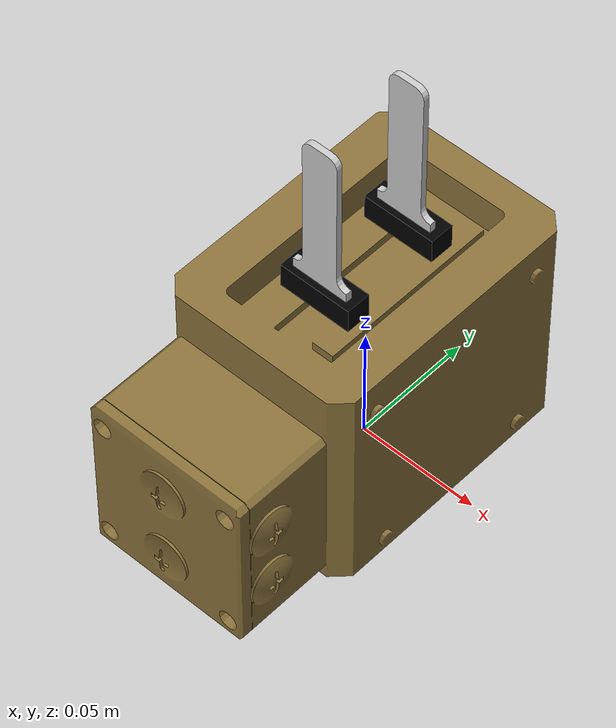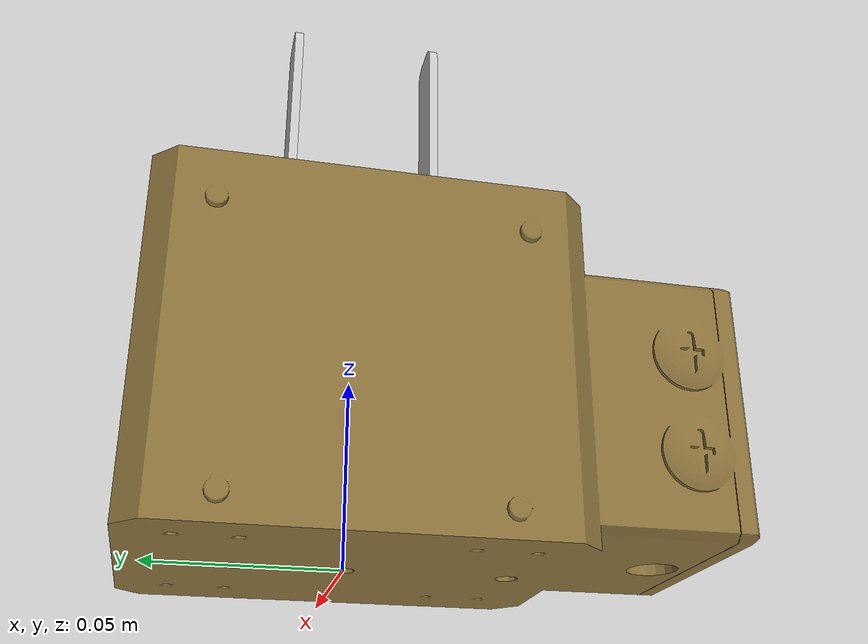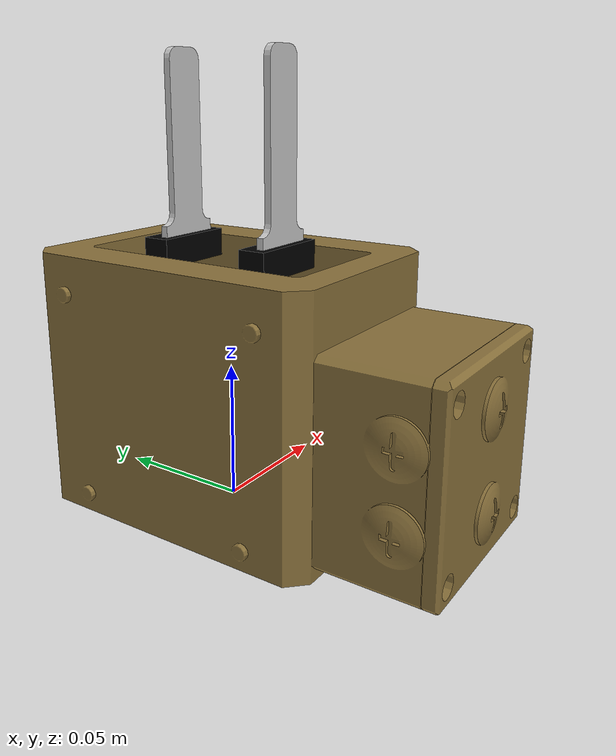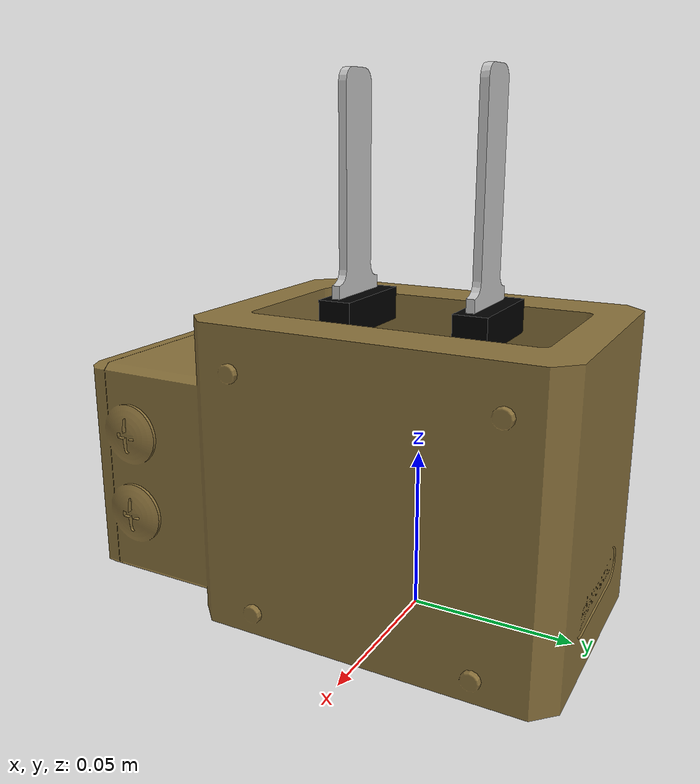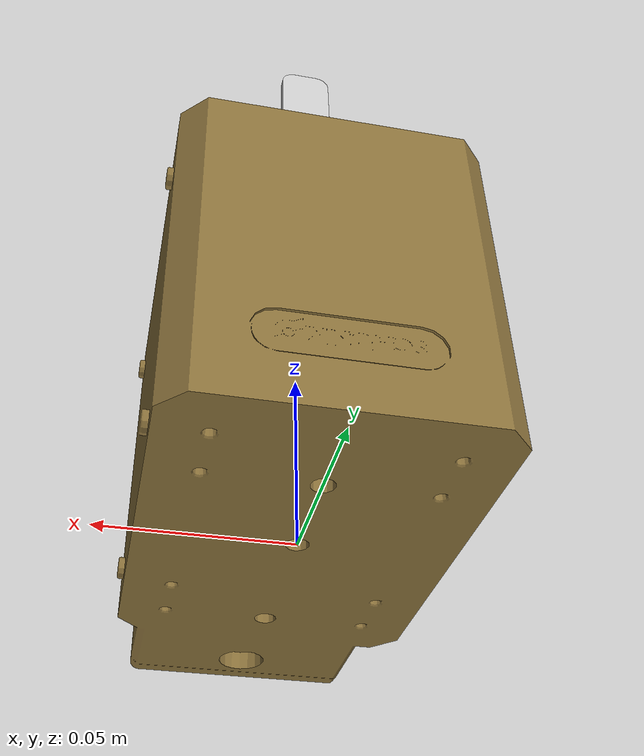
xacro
<?xml version="1.0"?>
<robot xmlns:xacro="http://www.ros.org/wiki/xacro"
  name="schunk_pg70">
  <xacro:include filename="$(find schunk_pg70)/urdf/pg70.urdf.xacro"/>

  <link name="base_link" />

  <xacro:schunk_pg70 name="schunk_pg70" parent="base_link" >
    <origin xyz="0 0 0" rpy="0 -${pi/2} 0" />
  </xacro:schunk_pg70>

 </robot>

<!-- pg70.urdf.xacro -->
<robot xmlns:xacro="http://www.ros.org/wiki/xacro">
  <xacro:include filename="$(find schunk_pg70)/urdf/pg70.transmission.xacro" />
  <xacro:include filename="$(find schunk_pg70)/urdf/pg70.gazebo.xacro" />

  <xacro:macro name="schunk_pg70" params="parent name *origin ">
    <joint name="${name}_base_joint" type="fixed" >
      <parent link="${parent}" />
      <child link="${name}_base_link" />
      <xacro:insert_block name="origin" />
    </joint>

<!--     PALM -->

    <link name="${name}_base_link">
      <visual>
        <geometry>
          <mesh filename="package://schunk_pg70/meshes/tool_frame.stl" />
        </geometry>
        <material name="blue">
           <color rgba="0.549019608 0.450980392 0.235294118 1" />
        </material>
      </visual>
      <collision>
        <geometry>
          <mesh filename="package://schunk_pg70/meshes/tool_frame.stl" />
        </geometry>
      </collision>
      <inertial>
        <origin xyz="0.042814 -0.015479 0.0" rpy="0 0 0"/>
       <mass value="1.4"/>
          <inertia ixx="0.000002" ixy="0.000000" ixz="0.000000" iyy="0.000001" iyz="0.000000" izz="0.000002" />
    </inertial>
    </link>

    <link name="${name}_finger_left_link">
      <visual>
        <geometry>
          <box size="0.03 0.01 0.01"/>
        </geometry>
        <material name="black">
          <color rgba="0 0 0 1"/>
        </material>
      </visual>
      <collision>
        <geometry>
          <box size="0.03 0.01 0.01"/>
        </geometry>
      </collision>
      <inertial>
        <origin xyz="0 0 0" rpy="0 0 0"/>
        <mass value="0.01"/>
          <inertia ixx="0.0001" ixy="0" ixz="0" iyy="0.0001" iyz="0" izz="0.0001" />
      </inertial>
    </link>

    <link name="${name}_fingertip_left_link">
      <visual>
        <geometry>
           <mesh filename="package://schunk_pg70/meshes/tip.stl" />
        </geometry>
        <material name="silver">
          <color rgba="0.8 0.8 0.8 1"/>
        </material>
      </visual>
      <collision>
        <geometry>
           <mesh filename="package://schunk_pg70/meshes/tip.stl" />
        </geometry>
      </collision>
      <inertial>
        <origin xyz="-0.001245 0.029667 0" rpy="0 0 0"/>
        <mass value="0.01"/>
          <inertia ixx="0.001" ixy="0" ixz="0" iyy="0.001" iyz="0" izz="0.001" />
      </inertial>
    </link>

    <!-- LEFT FINGER BASE -->

    <joint name="${name}_finger_left_joint" type="prismatic" >
      <parent link="${name}_base_link" />
      <child link="${name}_finger_left_link" />
      <limit effort="100" lower="0.001" upper="0.04" velocity="2.0"/>
      <origin xyz="0.092 0.0 0.0" rpy="0 ${pi/2} 0"/>
      <axis xyz="0 1 0" />
    </joint>

<!-- LEFT FINGERTIP -->

    <joint name="${name}_fingertip_left_joint" type="fixed" >
      <parent link="${name}_finger_left_link" />
      <child link="${name}_fingertip_left_link" />
      <origin xyz="0 0.00 0.00" rpy="${pi/2} 0 ${pi/2}"/>
    </joint>

    <link name="${name}_finger_right_link">
      <visual>
        <geometry>
          <box size="0.03 0.01 0.01"/>
        </geometry>
	      <material name="black"/>
      </visual>
      <collision>
        <geometry>
          <box size="0.03 0.01 0.01"/>
        </geometry>
      </collision>
      <inertial>
        <origin xyz="0 0 0" rpy="0 0 0"/>
        <mass value="0.01"/>
          <inertia ixx="0.0001" ixy="0" ixz="0" iyy="0.0001" iyz="0" izz="0.0001" />
      </inertial>
    </link>

     <link name="${name}_fingertip_right_link">
      <visual>
        <geometry>
          <mesh filename="package://schunk_pg70/meshes/tip.stl" />
        </geometry>
        <material name="silver" />
      </visual>
      <collision>
        <geometry>
         <mesh filename="package://schunk_pg70/meshes/tip.stl" />
        </geometry>
     </collision>
     <inertial>
        <origin xyz="-0.001245 0.029667 0" rpy="0 0 0"/>
        <mass value="0.01"/>
          <inertia ixx="0.001" ixy="0" ixz="0" iyy="0.001" iyz="0" izz="0.001" />
      </inertial>
    </link>

<!-- RIGHT FINGER BASE -->
    <joint name="${name}_finger_right_joint" type="prismatic" >
      <parent link="${name}_base_link" />
      <child link="${name}_finger_right_link" />
      <limit effort="100" lower="0.001" upper="0.04" velocity="2.0"/>
      <origin xyz="0.092 0.0 0.0" rpy="0 ${pi/2} 0"/>
      <axis xyz="0 -1 0" />
    </joint>

<!-- RIGHT FINGERTIP -->
    <joint name="${name}_fingertip_right_joint" type="fixed" >
      <parent link="${name}_finger_right_link" />
      <child link="${name}_fingertip_right_link" />
      <origin xyz="0 0.00 0.00" rpy="${pi/2} 0 ${pi/2}"/>
   </joint>

    <xacro:schunk_pg70_gazebo name="${name}" />
    <xacro:schunk_pg70_transmission name="${name}" />
  </xacro:macro>

</robot>
